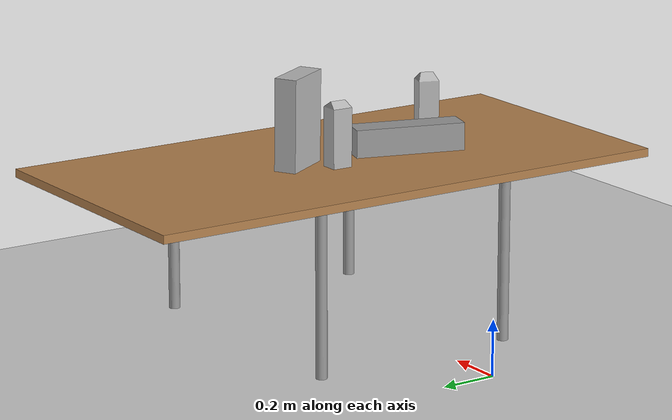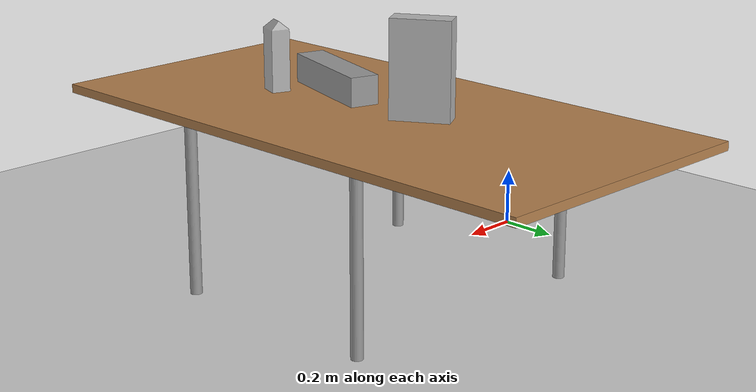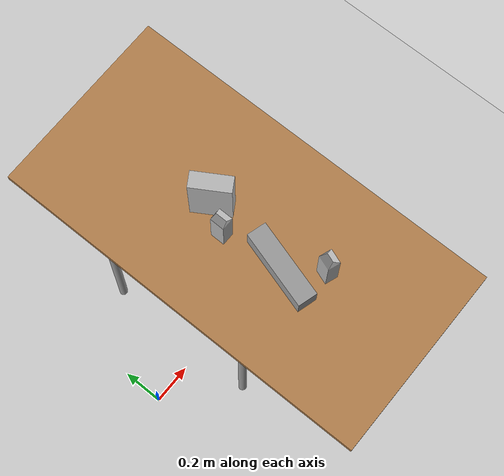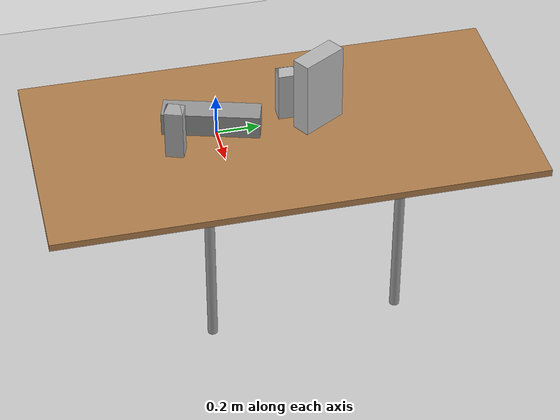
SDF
<sdf version="1.6">
 <world name="default">
  <physics name="default_physics" default="0" type="ode">
   <ode>
    <solver>
     <type>quick</type>
     <iters>20</iters>
     <sor>1</sor>
     <use_dynamic_moi_rescaling>0</use_dynamic_moi_rescaling>
    </solver>
    <constraints>
     <cfm>0</cfm>
     <erp>0.2</erp>
     <contact_max_correcting_vel>100</contact_max_correcting_vel>
     <contact_surface_layer>0</contact_surface_layer>
    </constraints>
   </ode>
   <real_time_update_rate>1000</real_time_update_rate>
   <max_step_size>0.001</max_step_size>
   <real_time_factor>1</real_time_factor>
  </physics>
  <light name="light1" type="directional">
   <pose>-2 0 4 0 -0 0</pose>
   <diffuse>1 1 1 1</diffuse>
   <specular>0.1 0.1 0.1 1</specular>
   <attenuation>
    <range>20</range>
    <constant>0.9</constant>
    <linear>0.01</linear>
    <quadratic>0.001</quadratic>
   </attenuation>
   <direction>0.2 0 -1</direction>
  </light>
  <model name="ground_plane">
   <static>1</static>
   <link name="link">
    <collision name="collision">
     <geometry><plane><normal>0 0 1</normal><size>100 100</size></plane></geometry>
     <surface>
      <contact><collide_bitmask>65535</collide_bitmask></contact>
      <friction><ode><mu>100</mu><mu2>50</mu2></ode></friction>
     </surface>
    </collision>
    <visual name="visual">
     <cast_shadows>0</cast_shadows>
     <geometry><plane><normal>0 0 1</normal><size>100 100</size></plane></geometry>
     <material>
      <script><uri>file://media/materials/scripts/gazebo.material</uri><name>Gazebo/Grey</name></script>
     </material>
    </visual>
   </link>
  </model>
  <model name="table1">
   <link name="link">
    <velocity_decay><linear>0</linear><angular>0</angular></velocity_decay>
    <inertial>
     <mass>1</mass>
     <inertia><ixx>1</ixx><ixy>0</ixy><ixz>0</ixz><iyy>1</iyy><iyz>0</iyz><izz>1</izz></inertia>
    </inertial>
    <visual name="visual1">
     <pose>0 0 0.59 0 -0 0</pose>
     <geometry><box><size>1 2 0.03</size></box></geometry>
     <material>
      <script><uri>file://media/materials/scripts/gazebo.material</uri><name>Gazebo/Wood</name></script>
      <shader type="vertex"><normal_map>__default__</normal_map></shader>
      <ambient>1 1 1 1</ambient>
      <diffuse>1 1 1 1</diffuse>
      <specular>0.2 0.2 0.2 1</specular>
      <emissive>0 0 0 1</emissive>
     </material>
    </visual>
    <visual name="front_left_leg">
     <pose>0.48 0.38 0.3 0 -0 0</pose>
     <geometry><cylinder><radius>0.02</radius><length>0.6</length></cylinder></geometry>
     <material>
      <script><uri>file://media/materials/scripts/gazebo.material</uri><name>Gazebo/Grey</name></script>
      <shader type="vertex"><normal_map>__default__</normal_map></shader>
      <ambient>0.3 0.3 0.3 1</ambient>
      <diffuse>0.7 0.7 0.7 1</diffuse>
      <specular>0.01 0.01 0.01 1</specular>
      <emissive>0 0 0 1</emissive>
     </material>
    </visual>
    <visual name="front_right_leg">
     <pose>0.48 -0.38 0.3 0 -0 0</pose>
     <geometry><cylinder><radius>0.02</radius><length>0.6</length></cylinder></geometry>
     <material>
      <script><uri>file://media/materials/scripts/gazebo.material</uri><name>Gazebo/Grey</name></script>
      <shader type="vertex"><normal_map>__default__</normal_map></shader>
      <ambient>0.3 0.3 0.3 1</ambient>
      <diffuse>0.7 0.7 0.7 1</diffuse>
      <specular>0.01 0.01 0.01 1</specular>
      <emissive>0 0 0 1</emissive>
     </material>
    </visual>
    <visual name="back_right_leg">
     <pose>-0.48 -0.38 0.3 0 -0 0</pose>
     <geometry><cylinder><radius>0.02</radius><length>0.6</length></cylinder></geometry>
     <material>
      <script><uri>file://media/materials/scripts/gazebo.material</uri><name>Gazebo/Grey</name></script>
      <shader type="vertex"><normal_map>__default__</normal_map></shader>
      <ambient>0.3 0.3 0.3 1</ambient>
      <diffuse>0.7 0.7 0.7 1</diffuse>
      <specular>0.01 0.01 0.01 1</specular>
      <emissive>0 0 0 1</emissive>
     </material>
    </visual>
    <visual name="back_left_leg">
     <pose>-0.48 0.38 0.3 0 -0 0</pose>
     <geometry><cylinder><radius>0.02</radius><length>0.6</length></cylinder></geometry>
     <material>
      <script><uri>file://media/materials/scripts/gazebo.material</uri><name>Gazebo/Grey</name></script>
      <shader type="vertex"><normal_map>__default__</normal_map></shader>
      <ambient>0.3 0.3 0.3 1</ambient>
      <diffuse>0.7 0.7 0.7 1</diffuse>
      <specular>0.01 0.01 0.01 1</specular>
      <emissive>0 0 0 1</emissive>
     </material>
    </visual>
    <collision name="surface">
     <pose>0 0 0.6 0 -0 0</pose>
     <geometry><box><size>1 2 0.015</size></box></geometry>
     <surface>
      <friction>
       <ode><mu>1</mu><mu2>1</mu2><fdir1>0 0 0</fdir1><slip1>0</slip1><slip2>0</slip2></ode>
       <torsional>
        <coefficient>1</coefficient>
        <patch_radius>0</patch_radius>
        <surface_radius>0</surface_radius>
        <use_patch_radius>1</use_patch_radius>
        <ode><slip>0</slip></ode>
       </torsional>
      </friction>
      <bounce><restitution_coefficient>0</restitution_coefficient><threshold>1e+06</threshold></bounce>
      <contact>
       <collide_without_contact>0</collide_without_contact>
       <collide_without_contact_bitmask>1</collide_without_contact_bitmask>
       <collide_bitmask>1</collide_bitmask>
       <ode>
        <soft_cfm>0</soft_cfm>
        <soft_erp>0.2</soft_erp>
        <kp>1e+13</kp>
        <kd>1</kd>
        <max_vel>0.01</max_vel>
        <min_depth>0</min_depth>
       </ode>
       <bullet>
        <split_impulse>1</split_impulse>
        <split_impulse_penetration_threshold>-0.01</split_impulse_penetration_threshold>
        <soft_cfm>0</soft_cfm>
        <soft_erp>0.2</soft_erp>
        <kp>1e+13</kp>
        <kd>1</kd>
       </bullet>
      </contact>
     </surface>
    </collision>
    <collision name="front_left_leg">
     <pose>0.48 0.38 0.3 0 -0 0</pose>
     <geometry><cylinder><radius>0.02</radius><length>0.6</length></cylinder></geometry>
     <surface>
      <friction>
       <ode><mu>1</mu><mu2>1</mu2><fdir1>0 0 0</fdir1><slip1>0</slip1><slip2>0</slip2></ode>
       <torsional>
        <coefficient>1</coefficient>
        <patch_radius>0</patch_radius>
        <surface_radius>0</surface_radius>
        <use_patch_radius>1</use_patch_radius>
        <ode><slip>0</slip></ode>
       </torsional>
      </friction>
      <bounce><restitution_coefficient>0</restitution_coefficient><threshold>1e+06</threshold></bounce>
      <contact>
       <collide_without_contact>0</collide_without_contact>
       <collide_without_contact_bitmask>1</collide_without_contact_bitmask>
       <collide_bitmask>1</collide_bitmask>
       <ode>
        <soft_cfm>0</soft_cfm>
        <soft_erp>0.2</soft_erp>
        <kp>1e+13</kp>
        <kd>1</kd>
        <max_vel>0.01</max_vel>
        <min_depth>0</min_depth>
       </ode>
       <bullet>
        <split_impulse>1</split_impulse>
        <split_impulse_penetration_threshold>-0.01</split_impulse_penetration_threshold>
        <soft_cfm>0</soft_cfm>
        <soft_erp>0.2</soft_erp>
        <kp>1e+13</kp>
        <kd>1</kd>
       </bullet>
      </contact>
     </surface>
    </collision>
    <collision name="front_right_leg">
     <pose>0.48 -0.38 0.3 0 -0 0</pose>
     <geometry><cylinder><radius>0.02</radius><length>0.6</length></cylinder></geometry>
     <surface>
      <friction>
       <ode><mu>1</mu><mu2>1</mu2><fdir1>0 0 0</fdir1><slip1>0</slip1><slip2>0</slip2></ode>
       <torsional>
        <coefficient>1</coefficient>
        <patch_radius>0</patch_radius>
        <surface_radius>0</surface_radius>
        <use_patch_radius>1</use_patch_radius>
        <ode><slip>0</slip></ode>
       </torsional>
      </friction>
      <bounce><restitution_coefficient>0</restitution_coefficient><threshold>1e+06</threshold></bounce>
      <contact>
       <collide_without_contact>0</collide_without_contact>
       <collide_without_contact_bitmask>1</collide_without_contact_bitmask>
       <collide_bitmask>1</collide_bitmask>
       <ode>
        <soft_cfm>0</soft_cfm>
        <soft_erp>0.2</soft_erp>
        <kp>1e+13</kp>
        <kd>1</kd>
        <max_vel>0.01</max_vel>
        <min_depth>0</min_depth>
       </ode>
       <bullet>
        <split_impulse>1</split_impulse>
        <split_impulse_penetration_threshold>-0.01</split_impulse_penetration_threshold>
        <soft_cfm>0</soft_cfm>
        <soft_erp>0.2</soft_erp>
        <kp>1e+13</kp>
        <kd>1</kd>
       </bullet>
      </contact>
     </surface>
    </collision>
    <collision name="back_right_leg">
     <pose>-0.48 -0.38 0.3 0 -0 0</pose>
     <geometry><cylinder><radius>0.02</radius><length>0.6</length></cylinder></geometry>
     <surface>
      <friction>
       <ode><mu>1</mu><mu2>1</mu2><fdir1>0 0 0</fdir1><slip1>0</slip1><slip2>0</slip2></ode>
       <torsional>
        <coefficient>1</coefficient>
        <patch_radius>0</patch_radius>
        <surface_radius>0</surface_radius>
        <use_patch_radius>1</use_patch_radius>
        <ode><slip>0</slip></ode>
       </torsional>
      </friction>
      <bounce><restitution_coefficient>0</restitution_coefficient><threshold>1e+06</threshold></bounce>
      <contact>
       <collide_without_contact>0</collide_without_contact>
       <collide_without_contact_bitmask>1</collide_without_contact_bitmask>
       <collide_bitmask>1</collide_bitmask>
       <ode>
        <soft_cfm>0</soft_cfm>
        <soft_erp>0.2</soft_erp>
        <kp>1e+13</kp>
        <kd>1</kd>
        <max_vel>0.01</max_vel>
        <min_depth>0</min_depth>
       </ode>
       <bullet>
        <split_impulse>1</split_impulse>
        <split_impulse_penetration_threshold>-0.01</split_impulse_penetration_threshold>
        <soft_cfm>0</soft_cfm>
        <soft_erp>0.2</soft_erp>
        <kp>1e+13</kp>
        <kd>1</kd>
       </bullet>
      </contact>
     </surface>
    </collision>
    <collision name="back_left_leg">
     <pose>-0.48 0.38 0.3 0 -0 0</pose>
     <geometry><cylinder><radius>0.02</radius><length>0.6</length></cylinder></geometry>
     <surface>
      <friction>
       <ode><mu>1</mu><mu2>1</mu2><fdir1>0 0 0</fdir1><slip1>0</slip1><slip2>0</slip2></ode>
       <torsional>
        <coefficient>1</coefficient>
        <patch_radius>0</patch_radius>
        <surface_radius>0</surface_radius>
        <use_patch_radius>1</use_patch_radius>
        <ode><slip>0</slip></ode>
       </torsional>
      </friction>
      <bounce><restitution_coefficient>0</restitution_coefficient><threshold>1e+06</threshold></bounce>
      <contact>
       <collide_without_contact>0</collide_without_contact>
       <collide_without_contact_bitmask>1</collide_without_contact_bitmask>
       <collide_bitmask>1</collide_bitmask>
       <ode>
        <soft_cfm>0</soft_cfm>
        <soft_erp>0.2</soft_erp>
        <kp>1e+13</kp>
        <kd>1</kd>
        <max_vel>0.01</max_vel>
        <min_depth>0</min_depth>
       </ode>
       <bullet>
        <split_impulse>1</split_impulse>
        <split_impulse_penetration_threshold>-0.01</split_impulse_penetration_threshold>
        <soft_cfm>0</soft_cfm>
        <soft_erp>0.2</soft_erp>
        <kp>1e+13</kp>
        <kd>1</kd>
       </bullet>
      </contact>
     </surface>
    </collision>
   </link>
   <static>1</static>
   <pose>0.787018 0.108125 0 0 -0 0</pose>
  </model>
  <model name="cereal3">
   <link name="link_0">
    <inertial>
     <mass>0.2</mass>
     <inertia>
      <ixx>0.0024816</ixx>
      <ixy>0</ixy>
      <ixz>0</ixz>
      <iyy>0.0019217</iyy>
      <iyz>0</iyz>
      <izz>0.0007733</izz>
     </inertia>
    </inertial>
    <visual name="visual">
     <geometry><mesh><uri>model:///cereal3/meshes/cereal3.dae</uri><scale>0.5 0.5 0.5</scale></mesh></geometry>
    </visual>
    <collision name="collision">
     <geometry><box><size>0.08 0.2 0.33</size></box></geometry>
     <surface>
      <friction>
       <ode><mu>1</mu><mu2>1</mu2><fdir1>0 0 0</fdir1><slip1>0</slip1><slip2>0</slip2></ode>
       <torsional>
        <coefficient>1</coefficient>
        <patch_radius>0</patch_radius>
        <surface_radius>0</surface_radius>
        <use_patch_radius>1</use_patch_radius>
        <ode><slip>0</slip></ode>
       </torsional>
      </friction>
      <bounce><restitution_coefficient>0</restitution_coefficient><threshold>1e+06</threshold></bounce>
      <contact>
       <collide_without_contact>0</collide_without_contact>
       <collide_without_contact_bitmask>1</collide_without_contact_bitmask>
       <collide_bitmask>1</collide_bitmask>
       <ode>
        <soft_cfm>0</soft_cfm>
        <soft_erp>0.2</soft_erp>
        <kp>1e+13</kp>
        <kd>1</kd>
        <max_vel>0.01</max_vel>
        <min_depth>0.001</min_depth>
       </ode>
       <bullet>
        <split_impulse>1</split_impulse>
        <split_impulse_penetration_threshold>-0.01</split_impulse_penetration_threshold>
        <soft_cfm>0</soft_cfm>
        <soft_erp>0.2</soft_erp>
        <kp>1e+13</kp>
        <kd>1</kd>
       </bullet>
      </contact>
     </surface>
    </collision>
   </link>
   <static>0</static>
   <pose>0.768497 0.278998 0.772069 0.000917 0.012239 -2.59928</pose>
  </model>
  <gravity>0 0 -9.81</gravity>
  <magnetic_field>6e-06 2.3e-05 -4.2e-05</magnetic_field>
  <atmosphere type="adiabatic"/>
  <scene><ambient>0.4 0.4 0.4 1</ambient><background>0.7 0.7 0.7 1</background><shadows>1</shadows></scene>
  <audio><device>default</device></audio>
  <spherical_coordinates>
   <surface_model>EARTH_WGS84</surface_model>
   <latitude_deg>0</latitude_deg>
   <longitude_deg>0</longitude_deg>
   <elevation>0</elevation>
   <heading_deg>0</heading_deg>
  </spherical_coordinates>
  <model name="milk2">
   <link name="link_0">
    <inertial>
     <mass>0.2</mass>
     <inertia>
      <ixx>0.0016524</ixx>
      <ixy>0</ixy>
      <ixz>0</ixz>
      <iyy>0.0016064</iyy>
      <iyz>0</iyz>
      <izz>0.000319</izz>
     </inertia>
    </inertial>
    <pose>-0.032 0 0 0 -0 0</pose>
    <visual name="visual">
     <pose>0 -0.002 -0.1 0 -0 0</pose>
     <geometry><mesh><uri>model:///milk2/meshes/milk2.dae</uri><scale>0.01 0.01 0.01</scale></mesh></geometry>
     <material>
      <script><uri>file://media/materials/scripts/gazebo.material</uri><name>Gazebo/DepthMapVS</name></script>
      <lighting>1</lighting>
      <ambient>0.5 0.3 0.3 1</ambient>
      <diffuse>0.7 0.7 0.7 1</diffuse>
      <specular>0.01 0.01 0.01 1</specular>
      <emissive>0 0 0 1</emissive>
     </material>
    </visual>
    <collision name="collision">
     <pose>0.02 -0.002 0.01 0 -0 0</pose>
     <geometry><box><size>0.064 0.074 0.23</size></box></geometry>
     <surface>
      <friction>
       <ode><mu>1</mu><mu2>1</mu2><fdir1>0 0 0</fdir1><slip1>0</slip1><slip2>0</slip2></ode>
       <torsional>
        <coefficient>1</coefficient>
        <patch_radius>0</patch_radius>
        <surface_radius>0</surface_radius>
        <use_patch_radius>1</use_patch_radius>
        <ode><slip>0</slip></ode>
       </torsional>
      </friction>
      <bounce><restitution_coefficient>0</restitution_coefficient><threshold>1e+06</threshold></bounce>
      <contact>
       <collide_without_contact>0</collide_without_contact>
       <collide_without_contact_bitmask>1</collide_without_contact_bitmask>
       <collide_bitmask>1</collide_bitmask>
       <ode>
        <soft_cfm>0</soft_cfm>
        <soft_erp>0.2</soft_erp>
        <kp>1e+13</kp>
        <kd>1</kd>
        <max_vel>0.01</max_vel>
        <min_depth>0.001</min_depth>
       </ode>
       <bullet>
        <split_impulse>1</split_impulse>
        <split_impulse_penetration_threshold>-0.01</split_impulse_penetration_threshold>
        <soft_cfm>0</soft_cfm>
        <soft_erp>0.2</soft_erp>
        <kp>1e+13</kp>
        <kd>1</kd>
       </bullet>
      </contact>
     </surface>
    </collision>
   </link>
   <static>0</static>
   <pose>0.702162 0.165202 0.711781 0.002643 0.005683 -0.010507</pose>
  </model>
  <model name="milk1">
   <link name="link_0">
    <inertial>
     <mass>0.2</mass>
     <inertia>
      <ixx>0.0016524</ixx>
      <ixy>0</ixy>
      <ixz>0</ixz>
      <iyy>0.0016064</iyy>
      <iyz>0</iyz>
      <izz>0.000319</izz>
     </inertia>
    </inertial>
    <pose>-0 -0 -0.02 0 -0 0</pose>
    <visual name="visual">
     <pose>0 -0.002 -0.1 0 -0 0</pose>
     <geometry><mesh><uri>model:///milk1/meshes/milk1.dae</uri><scale>0.01 0.01 0.01</scale></mesh></geometry>
     <material>
      <script><uri>file://media/materials/scripts/gazebo.material</uri><name>Gazebo/DepthMapVS</name></script>
      <lighting>1</lighting>
      <ambient>0.5 0.3 0.3 1</ambient>
      <diffuse>0.7 0.7 0.7 1</diffuse>
      <specular>0.01 0.01 0.01 1</specular>
      <emissive>0 0 0 1</emissive>
     </material>
    </visual>
    <collision name="collision">
     <pose>0 0 0.02 0 -0 0</pose>
     <geometry><box><size>0.064 0.074 0.24</size></box></geometry>
     <surface>
      <friction>
       <ode><mu>1</mu><mu2>1</mu2><fdir1>0 0 0</fdir1><slip1>0</slip1><slip2>0</slip2></ode>
       <torsional>
        <coefficient>1</coefficient>
        <patch_radius>0</patch_radius>
        <surface_radius>0</surface_radius>
        <use_patch_radius>1</use_patch_radius>
        <ode><slip>0</slip></ode>
       </torsional>
      </friction>
      <bounce><restitution_coefficient>0</restitution_coefficient><threshold>1e+06</threshold></bounce>
      <contact>
       <collide_without_contact>0</collide_without_contact>
       <collide_without_contact_bitmask>1</collide_without_contact_bitmask>
       <collide_bitmask>1</collide_bitmask>
       <ode>
        <soft_cfm>0</soft_cfm>
        <soft_erp>0.2</soft_erp>
        <kp>1e+13</kp>
        <kd>1</kd>
        <max_vel>0.01</max_vel>
        <min_depth>0.001</min_depth>
       </ode>
       <bullet>
        <split_impulse>1</split_impulse>
        <split_impulse_penetration_threshold>-0.01</split_impulse_penetration_threshold>
        <soft_cfm>0</soft_cfm>
        <soft_erp>0.2</soft_erp>
        <kp>1e+13</kp>
        <kd>1</kd>
       </bullet>
      </contact>
     </surface>
    </collision>
   </link>
   <static>0</static>
   <pose>0.845933 -0.323327 0.727491 1e-05 0.000267 -0.346369</pose>
  </model>
  <model name="bread">
   <link name="link_0">
    <inertial>
     <mass>1</mass>
     <inertia>
      <ixx>0.166667</ixx>
      <ixy>0</ixy>
      <ixz>0</ixz>
      <iyy>0.166667</iyy>
      <iyz>0</iyz>
      <izz>0.166667</izz>
     </inertia>
    </inertial>
    <pose>1.39034 0.420062 0.561151 -1.5566 -0.022582 -0.122903</pose>
    <visual name="visual">
     <geometry><box><size>0.1 0.1 0.4</size></box></geometry>
     <material>
      <lighting>1</lighting>
      <script><uri>file://media/materials/scripts/gazebo.material</uri><name>Gazebo/Grey</name></script>
      <shader type="vertex"><normal_map>__default__</normal_map></shader>
      <ambient>0.3 0.3 0.3 1</ambient>
      <diffuse>0.7 0.7 0.7 1</diffuse>
      <specular>0.01 0.01 0.01 1</specular>
      <emissive>0 0 0 1</emissive>
     </material>
    </visual>
    <collision name="collision">
     <geometry><box><size>0.1 0.1 0.4</size></box></geometry>
     <surface>
      <friction>
       <ode><mu>1</mu><mu2>1</mu2><fdir1>0 0 0</fdir1><slip1>0</slip1><slip2>0</slip2></ode>
       <torsional>
        <coefficient>1</coefficient>
        <patch_radius>0</patch_radius>
        <surface_radius>0</surface_radius>
        <use_patch_radius>1</use_patch_radius>
        <ode><slip>0</slip></ode>
       </torsional>
      </friction>
      <bounce><restitution_coefficient>0</restitution_coefficient><threshold>1e+06</threshold></bounce>
      <contact>
       <collide_without_contact>0</collide_without_contact>
       <collide_without_contact_bitmask>1</collide_without_contact_bitmask>
       <collide_bitmask>1</collide_bitmask>
       <ode>
        <soft_cfm>0</soft_cfm>
        <soft_erp>0.2</soft_erp>
        <kp>1e+13</kp>
        <kd>1</kd>
        <max_vel>0.01</max_vel>
        <min_depth>0</min_depth>
       </ode>
       <bullet>
        <split_impulse>1</split_impulse>
        <split_impulse_penetration_threshold>-0.01</split_impulse_penetration_threshold>
        <soft_cfm>0</soft_cfm>
        <soft_erp>0.2</soft_erp>
        <kp>1e+13</kp>
        <kd>1</kd>
       </bullet>
      </contact>
     </surface>
    </collision>
   </link>
   <static>0</static>
   <pose>-0.725167 -0.343485 0.134883 -0.011327 0.024152 -0.165348</pose>
  </model>
 </world>
</sdf>
